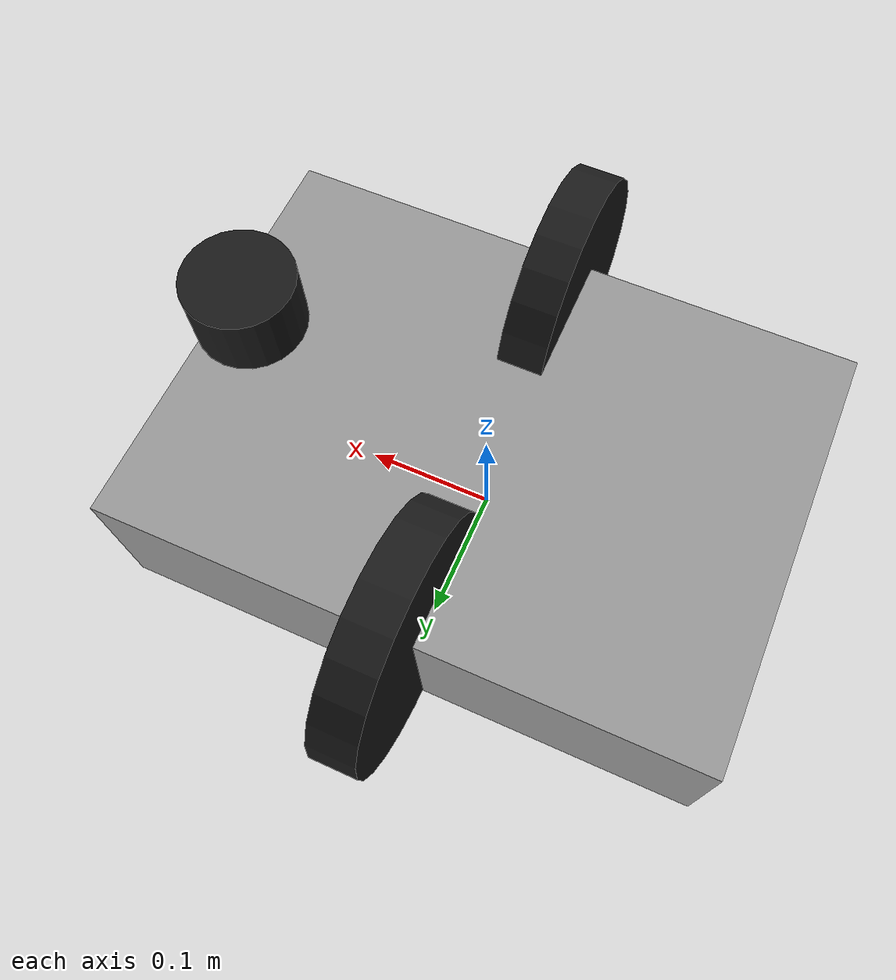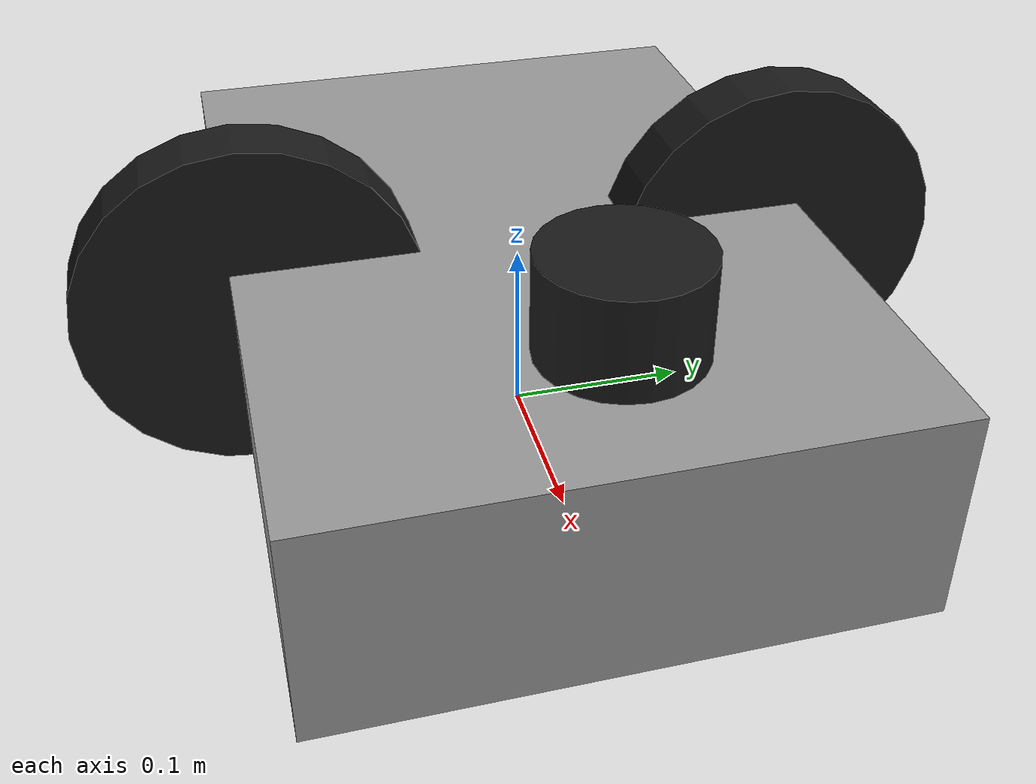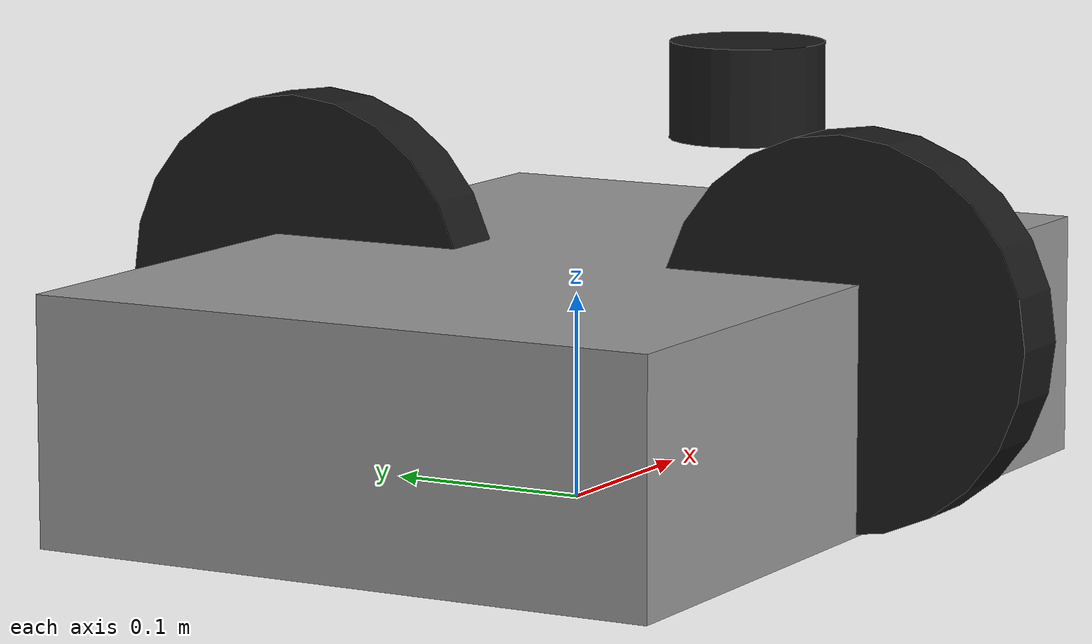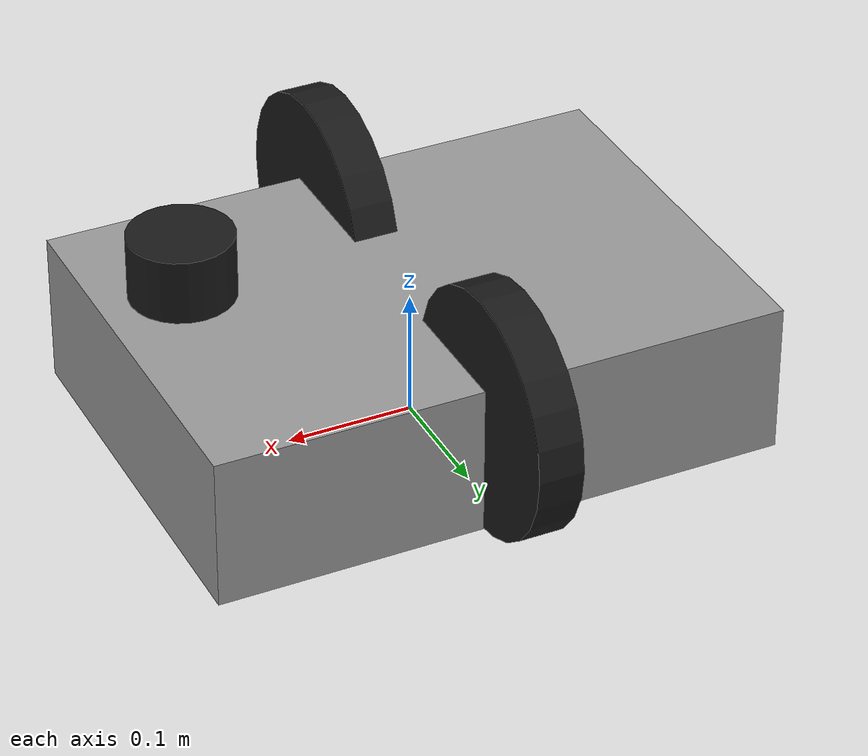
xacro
<?xml version="1.0"?>
<robot xmlns:xacro="http://www.ros.org/wiki/xacro" name="ugv_pioneer_like">

  <xacro:property name="pi" value="3.141592653589793"/>
  <xacro:property name="base_length" value="0.45"/>
  <xacro:property name="base_width"  value="0.32"/>
  <xacro:property name="base_height" value="0.12"/>

  <xacro:property name="wheel_radius" value="0.095"/>
  <xacro:property name="wheel_width"  value="0.035"/>
  <xacro:property name="wheel_sep"    value="0.30"/>

  <material name="Grey"><color rgba="0.6 0.6 0.6 1"/></material>
  <material name="Black"><color rgba="0.1 0.1 0.1 1"/></material>

  <link name="base_link">
    <inertial>
      <origin xyz="0 0 0" rpy="0 0 0"/>
      <mass value="12.0"/>
      <inertia ixx="0.30" ixy="0" ixz="0" iyy="0.40" iyz="0" izz="0.50"/>
    </inertial>
    <visual>
      <origin xyz="0 0 ${base_height/2.0}" rpy="0 0 0"/>
      <geometry><box size="${base_length} ${base_width} ${base_height}"/></geometry>
      <material name="Grey"/>
    </visual>
    <collision>
      <origin xyz="0 0 ${base_height/2.0}" rpy="0 0 0"/>
      <geometry><box size="${base_length} ${base_width} ${base_height}"/></geometry>
    </collision>
  </link>

  <link name="left_wheel_link">
    <inertial><origin xyz="0 0 0"/><mass value="1.0"/>
      <inertia ixx="0.01" ixy="0" ixz="0" iyy="0.01" iyz="0" izz="0.01"/>
    </inertial>
    <visual>
      <origin xyz="0 0 0" rpy="0 ${pi/2.0} 0"/>
      <geometry><cylinder radius="${wheel_radius}" length="${wheel_width}"/></geometry>
      <material name="Black"/>
    </visual>
    <collision>
      <origin xyz="0 0 0" rpy="0 ${pi/2.0} 0"/>
      <geometry><cylinder radius="${wheel_radius}" length="${wheel_width}"/></geometry>
    </collision>
  </link>

  <link name="right_wheel_link">
    <inertial><origin xyz="0 0 0"/><mass value="1.0"/>
      <inertia ixx="0.01" ixy="0" ixz="0" iyy="0.01" iyz="0" izz="0.01"/>
    </inertial>
    <visual>
      <origin xyz="0 0 0" rpy="0 ${pi/2.0} 0"/>
      <geometry><cylinder radius="${wheel_radius}" length="${wheel_width}"/></geometry>
      <material name="Black"/>
    </visual>
    <collision>
      <origin xyz="0 0 0" rpy="0 ${pi/2.0} 0"/>
      <geometry><cylinder radius="${wheel_radius}" length="${wheel_width}"/></geometry>
    </collision>
  </link>

  <joint name="left_wheel_joint" type="continuous">
    <parent link="base_link"/>
    <child link="left_wheel_link"/>
    <origin xyz="0 ${wheel_sep/2.0} ${wheel_radius}" rpy="0 0 0"/>
    <axis xyz="0 1 0"/>
  </joint>

  <joint name="right_wheel_joint" type="continuous">
    <parent link="base_link"/>
    <child link="right_wheel_link"/>
    <origin xyz="0 -${wheel_sep/2.0} ${wheel_radius}" rpy="0 0 0"/>
    <axis xyz="0 1 0"/>
  </joint>

  <link name="caster_link">
    <inertial><origin xyz="0 0 0"/><mass value="0.2"/>
      <inertia ixx="0.001" ixy="0" ixz="0" iyy="0.001" iyz="0" izz="0.001"/>
    </inertial>
    <visual><geometry><sphere radius="0.035"/></geometry><material name="Black"/></visual>
    <collision><geometry><sphere radius="0.035"/></geometry></collision>
  </link>

  <joint name="caster_joint" type="fixed">
    <parent link="base_link"/>
    <child link="caster_link"/>
    <origin xyz="-0.18 0 0.035" rpy="0 0 0"/>
  </joint>

  <link name="lidar_link">
    <visual>
      <geometry><cylinder radius="0.04" length="0.05"/></geometry>
      <material name="Black"/>
    </visual>
  </link>

  <joint name="lidar_joint" type="fixed">
    <parent link="base_link"/>
    <child link="lidar_link"/>
    <origin xyz="0.18 0 0.18" rpy="0 0 0"/>
  </joint>

  <gazebo reference="left_wheel_link"><mu1>1.2</mu1><mu2>1.2</mu2><kp>1e6</kp><kd>1</kd></gazebo>
  <gazebo reference="right_wheel_link"><mu1>1.2</mu1><mu2>1.2</mu2><kp>1e6</kp><kd>1</kd></gazebo>

  <gazebo>
    <plugin filename="libgz-sim-diff-drive-system.so" name="gz::sim::systems::DiffDrive">
      <left_joint>left_wheel_joint</left_joint>
      <right_joint>right_wheel_joint</right_joint>
      <wheel_separation>${wheel_sep}</wheel_separation>
      <wheel_radius>${wheel_radius}</wheel_radius>
      <topic>/cmd_vel</topic>
      <odom_topic>/odom</odom_topic>
      <frame_id>odom</frame_id>
      <child_frame_id>base_link</child_frame_id>
      <odom_publish_frequency>30</odom_publish_frequency>
    </plugin>
  </gazebo>

  <gazebo reference="lidar_link">
    <sensor name="lidar" type="gpu_ray">
      <update_rate>10</update_rate>
      <ray>
        <scan><horizontal><samples>720</samples><min_angle>-3.14159</min_angle><max_angle>3.14159</max_angle></horizontal></scan>
        <range><min>0.12</min><max>12.0</max></range>
      </ray>
      <topic>/scan</topic>
      <visualize>true</visualize>
    </sensor>
  </gazebo>

</robot>
